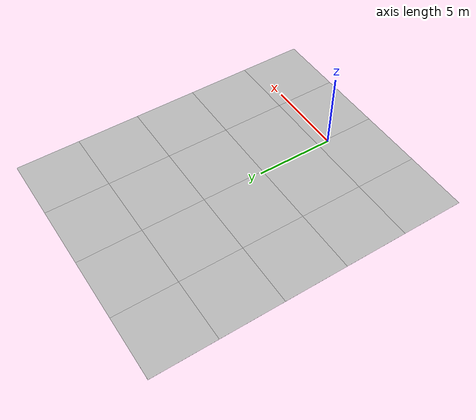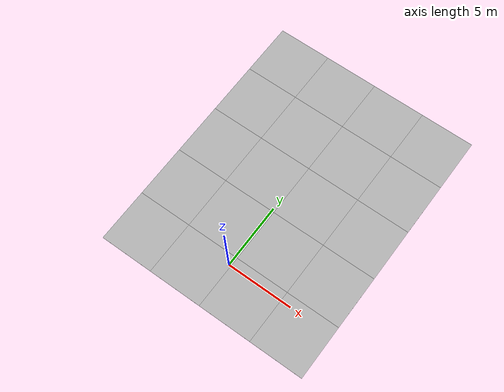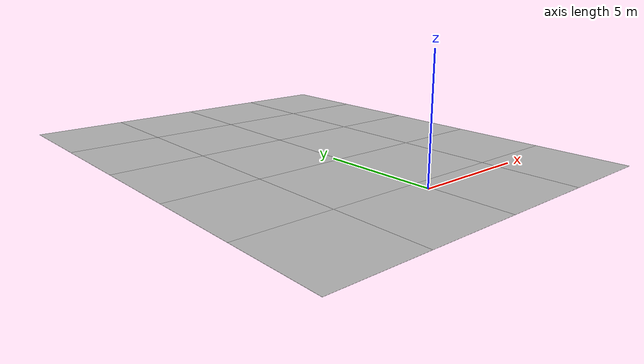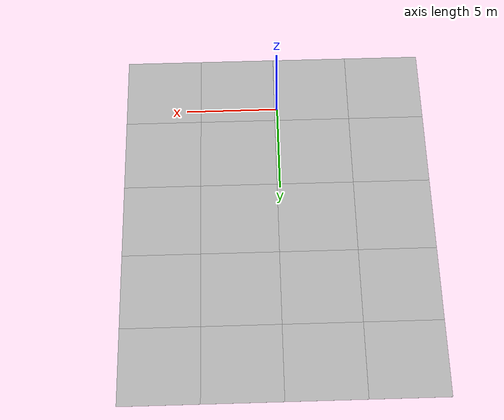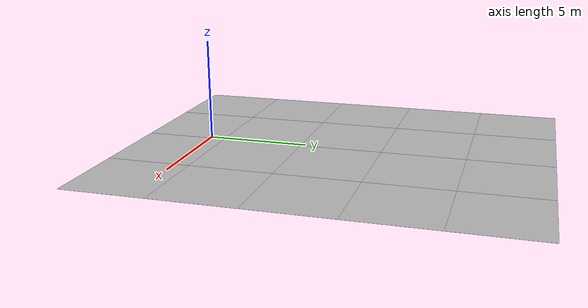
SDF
<sdf version='1.6'><world name='default'>
    <light name='sun_light' type='directional'>
      <pose frame=''>0 0 10 0 -0 0</pose>
      <diffuse>0.5 0.5 0.5 1</diffuse>
      <specular>0.1 0.1 0.1 1</specular>
      <direction>0.1 0.1 -0.9</direction>
      <attenuation>
        <range>20</range>
        <constant>0.5</constant>
        <linear>0.01</linear>
        <quadratic>0.001</quadratic>
      </attenuation>
      <cast_shadows>1</cast_shadows>
    </light>

    <model name='Tile/0-0'>
      <static>1</static>
      <link name='link'>
        <collision name='collision'>
          <geometry>
            <plane>
              <normal>0 0 1</normal>
              <size>4.096 4.096</size>
            </plane>
          </geometry>
          <surface>
            <friction>
              <ode>
                <mu>100</mu>
                <mu2>50</mu2>
              </ode>
              <torsional>
                <ode/>
              </torsional>
            </friction>
            <contact>
              <ode/>
            </contact>
            <bounce/>
          </surface>
          <max_contacts>10</max_contacts>
        </collision>
        <visual name='visual'>
          <cast_shadows>0</cast_shadows>
          <geometry>
            <plane>
              <normal>0 0 1</normal>
              <size>4.096 4.096</size>
            </plane>
          </geometry>
          <material>
            <script>
              <uri>file://materials/scripts</uri>
              <uri>file://materials/textures</uri>
              <name>Tile/5eab350b8220ac9944dbdfa4ac3288c7c17e24c3bf5df0dfcf6173d64dae00a1</name>
            </script>
          </material>
        </visual>
        <self_collide>0</self_collide>
        <enable_wind>0</enable_wind>
        <kinematic>0</kinematic>
      </link>
      <pose frame=''>-6.000071211363727 -1.3519999999999999 0 0 -0 0</pose>
    </model>

    <model name='Tile/0-1'>
      <static>1</static>
      <link name='link'>
        <collision name='collision'>
          <geometry>
            <plane>
              <normal>0 0 1</normal>
              <size>4.096 4.096</size>
            </plane>
          </geometry>
          <surface>
            <friction>
              <ode>
                <mu>100</mu>
                <mu2>50</mu2>
              </ode>
              <torsional>
                <ode/>
              </torsional>
            </friction>
            <contact>
              <ode/>
            </contact>
            <bounce/>
          </surface>
          <max_contacts>10</max_contacts>
        </collision>
        <visual name='visual'>
          <cast_shadows>0</cast_shadows>
          <geometry>
            <plane>
              <normal>0 0 1</normal>
              <size>4.096 4.096</size>
            </plane>
          </geometry>
          <material>
            <script>
              <uri>file://materials/scripts</uri>
              <uri>file://materials/textures</uri>
              <name>Tile/5eab350b8220ac9944dbdfa4ac3288c7c17e24c3bf5df0dfcf6173d64dae00a1</name>
            </script>
          </material>
        </visual>
        <self_collide>0</self_collide>
        <enable_wind>0</enable_wind>
        <kinematic>0</kinematic>
      </link>
      <pose frame=''>-6.000071211363727 2.744 0 0 -0 0</pose>
    </model>

    <model name='Tile/0-2'>
      <static>1</static>
      <link name='link'>
        <collision name='collision'>
          <geometry>
            <plane>
              <normal>0 0 1</normal>
              <size>4.096 4.096</size>
            </plane>
          </geometry>
          <surface>
            <friction>
              <ode>
                <mu>100</mu>
                <mu2>50</mu2>
              </ode>
              <torsional>
                <ode/>
              </torsional>
            </friction>
            <contact>
              <ode/>
            </contact>
            <bounce/>
          </surface>
          <max_contacts>10</max_contacts>
        </collision>
        <visual name='visual'>
          <cast_shadows>0</cast_shadows>
          <geometry>
            <plane>
              <normal>0 0 1</normal>
              <size>4.096 4.096</size>
            </plane>
          </geometry>
          <material>
            <script>
              <uri>file://materials/scripts</uri>
              <uri>file://materials/textures</uri>
              <name>Tile/5eab350b8220ac9944dbdfa4ac3288c7c17e24c3bf5df0dfcf6173d64dae00a1</name>
            </script>
          </material>
        </visual>
        <self_collide>0</self_collide>
        <enable_wind>0</enable_wind>
        <kinematic>0</kinematic>
      </link>
      <pose frame=''>-6.000071211363727 6.84 0 0 -0 0</pose>
    </model>

    <model name='Tile/0-3'>
      <static>1</static>
      <link name='link'>
        <collision name='collision'>
          <geometry>
            <plane>
              <normal>0 0 1</normal>
              <size>4.096 4.096</size>
            </plane>
          </geometry>
          <surface>
            <friction>
              <ode>
                <mu>100</mu>
                <mu2>50</mu2>
              </ode>
              <torsional>
                <ode/>
              </torsional>
            </friction>
            <contact>
              <ode/>
            </contact>
            <bounce/>
          </surface>
          <max_contacts>10</max_contacts>
        </collision>
        <visual name='visual'>
          <cast_shadows>0</cast_shadows>
          <geometry>
            <plane>
              <normal>0 0 1</normal>
              <size>4.096 4.096</size>
            </plane>
          </geometry>
          <material>
            <script>
              <uri>file://materials/scripts</uri>
              <uri>file://materials/textures</uri>
              <name>Tile/7968d2dd25822942447690608d7d124fd29300431d4a05dcc71f891a0a8b60aa</name>
            </script>
          </material>
        </visual>
        <self_collide>0</self_collide>
        <enable_wind>0</enable_wind>
        <kinematic>0</kinematic>
      </link>
      <pose frame=''>-6.000071211363727 10.936 0 0 -0 0</pose>
    </model>

    <model name='Tile/0-4'>
      <static>1</static>
      <link name='link'>
        <collision name='collision'>
          <geometry>
            <plane>
              <normal>0 0 1</normal>
              <size>4.096 4.096</size>
            </plane>
          </geometry>
          <surface>
            <friction>
              <ode>
                <mu>100</mu>
                <mu2>50</mu2>
              </ode>
              <torsional>
                <ode/>
              </torsional>
            </friction>
            <contact>
              <ode/>
            </contact>
            <bounce/>
          </surface>
          <max_contacts>10</max_contacts>
        </collision>
        <visual name='visual'>
          <cast_shadows>0</cast_shadows>
          <geometry>
            <plane>
              <normal>0 0 1</normal>
              <size>4.096 4.096</size>
            </plane>
          </geometry>
          <material>
            <script>
              <uri>file://materials/scripts</uri>
              <uri>file://materials/textures</uri>
              <name>Tile/b1a4e791d89e50a50dee77e37141c98dacc1c2ee67ded28e1726121f49cb9547</name>
            </script>
          </material>
        </visual>
        <self_collide>0</self_collide>
        <enable_wind>0</enable_wind>
        <kinematic>0</kinematic>
      </link>
      <pose frame=''>-6.000071211363727 15.031999999999998 0 0 -0 0</pose>
    </model>

    <model name='Tile/1-0'>
      <static>1</static>
      <link name='link'>
        <collision name='collision'>
          <geometry>
            <plane>
              <normal>0 0 1</normal>
              <size>4.096 4.096</size>
            </plane>
          </geometry>
          <surface>
            <friction>
              <ode>
                <mu>100</mu>
                <mu2>50</mu2>
              </ode>
              <torsional>
                <ode/>
              </torsional>
            </friction>
            <contact>
              <ode/>
            </contact>
            <bounce/>
          </surface>
          <max_contacts>10</max_contacts>
        </collision>
        <visual name='visual'>
          <cast_shadows>0</cast_shadows>
          <geometry>
            <plane>
              <normal>0 0 1</normal>
              <size>4.096 4.096</size>
            </plane>
          </geometry>
          <material>
            <script>
              <uri>file://materials/scripts</uri>
              <uri>file://materials/textures</uri>
              <name>Tile/aaa59d9bf7729be51c916e444f146310e3d09b5bed3707d455f523dbf90cf39a</name>
            </script>
          </material>
        </visual>
        <self_collide>0</self_collide>
        <enable_wind>0</enable_wind>
        <kinematic>0</kinematic>
      </link>
      <pose frame=''>-1.9040712113637266 -1.3519999999999999 0 0 -0 0</pose>
    </model>

    <model name='Tile/1-1'>
      <static>1</static>
      <link name='link'>
        <collision name='collision'>
          <geometry>
            <plane>
              <normal>0 0 1</normal>
              <size>4.096 4.096</size>
            </plane>
          </geometry>
          <surface>
            <friction>
              <ode>
                <mu>100</mu>
                <mu2>50</mu2>
              </ode>
              <torsional>
                <ode/>
              </torsional>
            </friction>
            <contact>
              <ode/>
            </contact>
            <bounce/>
          </surface>
          <max_contacts>10</max_contacts>
        </collision>
        <visual name='visual'>
          <cast_shadows>0</cast_shadows>
          <geometry>
            <plane>
              <normal>0 0 1</normal>
              <size>4.096 4.096</size>
            </plane>
          </geometry>
          <material>
            <script>
              <uri>file://materials/scripts</uri>
              <uri>file://materials/textures</uri>
              <name>Tile/5eab350b8220ac9944dbdfa4ac3288c7c17e24c3bf5df0dfcf6173d64dae00a1</name>
            </script>
          </material>
        </visual>
        <self_collide>0</self_collide>
        <enable_wind>0</enable_wind>
        <kinematic>0</kinematic>
      </link>
      <pose frame=''>-1.9040712113637266 2.744 0 0 -0 0</pose>
    </model>

    <model name='Tile/1-2'>
      <static>1</static>
      <link name='link'>
        <collision name='collision'>
          <geometry>
            <plane>
              <normal>0 0 1</normal>
              <size>4.096 4.096</size>
            </plane>
          </geometry>
          <surface>
            <friction>
              <ode>
                <mu>100</mu>
                <mu2>50</mu2>
              </ode>
              <torsional>
                <ode/>
              </torsional>
            </friction>
            <contact>
              <ode/>
            </contact>
            <bounce/>
          </surface>
          <max_contacts>10</max_contacts>
        </collision>
        <visual name='visual'>
          <cast_shadows>0</cast_shadows>
          <geometry>
            <plane>
              <normal>0 0 1</normal>
              <size>4.096 4.096</size>
            </plane>
          </geometry>
          <material>
            <script>
              <uri>file://materials/scripts</uri>
              <uri>file://materials/textures</uri>
              <name>Tile/4b8e055e1231cba4dbbb75f1d346e650e340bab5f44de81bca253f0abc9ff5a4</name>
            </script>
          </material>
        </visual>
        <self_collide>0</self_collide>
        <enable_wind>0</enable_wind>
        <kinematic>0</kinematic>
      </link>
      <pose frame=''>-1.9040712113637266 6.84 0 0 -0 0</pose>
    </model>

    <model name='Tile/1-3'>
      <static>1</static>
      <link name='link'>
        <collision name='collision'>
          <geometry>
            <plane>
              <normal>0 0 1</normal>
              <size>4.096 4.096</size>
            </plane>
          </geometry>
          <surface>
            <friction>
              <ode>
                <mu>100</mu>
                <mu2>50</mu2>
              </ode>
              <torsional>
                <ode/>
              </torsional>
            </friction>
            <contact>
              <ode/>
            </contact>
            <bounce/>
          </surface>
          <max_contacts>10</max_contacts>
        </collision>
        <visual name='visual'>
          <cast_shadows>0</cast_shadows>
          <geometry>
            <plane>
              <normal>0 0 1</normal>
              <size>4.096 4.096</size>
            </plane>
          </geometry>
          <material>
            <script>
              <uri>file://materials/scripts</uri>
              <uri>file://materials/textures</uri>
              <name>Tile/e3db37d393fc11b6df18f2b366b197519d1f4ecbfc96175ee9e874dfee3612c6</name>
            </script>
          </material>
        </visual>
        <self_collide>0</self_collide>
        <enable_wind>0</enable_wind>
        <kinematic>0</kinematic>
      </link>
      <pose frame=''>-1.9040712113637266 10.936 0 0 -0 0</pose>
    </model>

    <model name='Tile/1-4'>
      <static>1</static>
      <link name='link'>
        <collision name='collision'>
          <geometry>
            <plane>
              <normal>0 0 1</normal>
              <size>4.096 4.096</size>
            </plane>
          </geometry>
          <surface>
            <friction>
              <ode>
                <mu>100</mu>
                <mu2>50</mu2>
              </ode>
              <torsional>
                <ode/>
              </torsional>
            </friction>
            <contact>
              <ode/>
            </contact>
            <bounce/>
          </surface>
          <max_contacts>10</max_contacts>
        </collision>
        <visual name='visual'>
          <cast_shadows>0</cast_shadows>
          <geometry>
            <plane>
              <normal>0 0 1</normal>
              <size>4.096 4.096</size>
            </plane>
          </geometry>
          <material>
            <script>
              <uri>file://materials/scripts</uri>
              <uri>file://materials/textures</uri>
              <name>Tile/8f731d8d211b837ce30188a5d5c2fb28cee32955be0bffc718181ce14878d47d</name>
            </script>
          </material>
        </visual>
        <self_collide>0</self_collide>
        <enable_wind>0</enable_wind>
        <kinematic>0</kinematic>
      </link>
      <pose frame=''>-1.9040712113637266 15.031999999999998 0 0 -0 0</pose>
    </model>

    <model name='Tile/2-0'>
      <static>1</static>
      <link name='link'>
        <collision name='collision'>
          <geometry>
            <plane>
              <normal>0 0 1</normal>
              <size>4.096 4.096</size>
            </plane>
          </geometry>
          <surface>
            <friction>
              <ode>
                <mu>100</mu>
                <mu2>50</mu2>
              </ode>
              <torsional>
                <ode/>
              </torsional>
            </friction>
            <contact>
              <ode/>
            </contact>
            <bounce/>
          </surface>
          <max_contacts>10</max_contacts>
        </collision>
        <visual name='visual'>
          <cast_shadows>0</cast_shadows>
          <geometry>
            <plane>
              <normal>0 0 1</normal>
              <size>4.096 4.096</size>
            </plane>
          </geometry>
          <material>
            <script>
              <uri>file://materials/scripts</uri>
              <uri>file://materials/textures</uri>
              <name>Tile/0cb4ca4c65ba40db8a47bcdcba6d051ada3fb983c005904544cce3afe15e2301</name>
            </script>
          </material>
        </visual>
        <self_collide>0</self_collide>
        <enable_wind>0</enable_wind>
        <kinematic>0</kinematic>
      </link>
      <pose frame=''>2.1919287886362735 -1.3519999999999999 0 0 -0 0</pose>
    </model>

    <model name='Tile/2-1'>
      <static>1</static>
      <link name='link'>
        <collision name='collision'>
          <geometry>
            <plane>
              <normal>0 0 1</normal>
              <size>4.096 4.096</size>
            </plane>
          </geometry>
          <surface>
            <friction>
              <ode>
                <mu>100</mu>
                <mu2>50</mu2>
              </ode>
              <torsional>
                <ode/>
              </torsional>
            </friction>
            <contact>
              <ode/>
            </contact>
            <bounce/>
          </surface>
          <max_contacts>10</max_contacts>
        </collision>
        <visual name='visual'>
          <cast_shadows>0</cast_shadows>
          <geometry>
            <plane>
              <normal>0 0 1</normal>
              <size>4.096 4.096</size>
            </plane>
          </geometry>
          <material>
            <script>
              <uri>file://materials/scripts</uri>
              <uri>file://materials/textures</uri>
              <name>Tile/988c334361e6e1fc733f92f7097d6621b4c5a086964d6c79136e4750b4d9be42</name>
            </script>
          </material>
        </visual>
        <self_collide>0</self_collide>
        <enable_wind>0</enable_wind>
        <kinematic>0</kinematic>
      </link>
      <pose frame=''>2.1919287886362735 2.744 0 0 -0 0</pose>
    </model>

    <model name='Tile/2-2'>
      <static>1</static>
      <link name='link'>
        <collision name='collision'>
          <geometry>
            <plane>
              <normal>0 0 1</normal>
              <size>4.096 4.096</size>
            </plane>
          </geometry>
          <surface>
            <friction>
              <ode>
                <mu>100</mu>
                <mu2>50</mu2>
              </ode>
              <torsional>
                <ode/>
              </torsional>
            </friction>
            <contact>
              <ode/>
            </contact>
            <bounce/>
          </surface>
          <max_contacts>10</max_contacts>
        </collision>
        <visual name='visual'>
          <cast_shadows>0</cast_shadows>
          <geometry>
            <plane>
              <normal>0 0 1</normal>
              <size>4.096 4.096</size>
            </plane>
          </geometry>
          <material>
            <script>
              <uri>file://materials/scripts</uri>
              <uri>file://materials/textures</uri>
              <name>Tile/fa6777ef363e64ed9761346e6966051e3522907134ed8ac138ceff247ff5946a</name>
            </script>
          </material>
        </visual>
        <self_collide>0</self_collide>
        <enable_wind>0</enable_wind>
        <kinematic>0</kinematic>
      </link>
      <pose frame=''>2.1919287886362735 6.84 0 0 -0 0</pose>
    </model>

    <model name='Tile/2-3'>
      <static>1</static>
      <link name='link'>
        <collision name='collision'>
          <geometry>
            <plane>
              <normal>0 0 1</normal>
              <size>4.096 4.096</size>
            </plane>
          </geometry>
          <surface>
            <friction>
              <ode>
                <mu>100</mu>
                <mu2>50</mu2>
              </ode>
              <torsional>
                <ode/>
              </torsional>
            </friction>
            <contact>
              <ode/>
            </contact>
            <bounce/>
          </surface>
          <max_contacts>10</max_contacts>
        </collision>
        <visual name='visual'>
          <cast_shadows>0</cast_shadows>
          <geometry>
            <plane>
              <normal>0 0 1</normal>
              <size>4.096 4.096</size>
            </plane>
          </geometry>
          <material>
            <script>
              <uri>file://materials/scripts</uri>
              <uri>file://materials/textures</uri>
              <name>Tile/9612d2192978744b50c9b67aaed5a21a49a4b2a2be373f8c0eedc751898f9afc</name>
            </script>
          </material>
        </visual>
        <self_collide>0</self_collide>
        <enable_wind>0</enable_wind>
        <kinematic>0</kinematic>
      </link>
      <pose frame=''>2.1919287886362735 10.936 0 0 -0 0</pose>
    </model>

    <model name='Tile/2-4'>
      <static>1</static>
      <link name='link'>
        <collision name='collision'>
          <geometry>
            <plane>
              <normal>0 0 1</normal>
              <size>4.096 4.096</size>
            </plane>
          </geometry>
          <surface>
            <friction>
              <ode>
                <mu>100</mu>
                <mu2>50</mu2>
              </ode>
              <torsional>
                <ode/>
              </torsional>
            </friction>
            <contact>
              <ode/>
            </contact>
            <bounce/>
          </surface>
          <max_contacts>10</max_contacts>
        </collision>
        <visual name='visual'>
          <cast_shadows>0</cast_shadows>
          <geometry>
            <plane>
              <normal>0 0 1</normal>
              <size>4.096 4.096</size>
            </plane>
          </geometry>
          <material>
            <script>
              <uri>file://materials/scripts</uri>
              <uri>file://materials/textures</uri>
              <name>Tile/5eab350b8220ac9944dbdfa4ac3288c7c17e24c3bf5df0dfcf6173d64dae00a1</name>
            </script>
          </material>
        </visual>
        <self_collide>0</self_collide>
        <enable_wind>0</enable_wind>
        <kinematic>0</kinematic>
      </link>
      <pose frame=''>2.1919287886362735 15.031999999999998 0 0 -0 0</pose>
    </model>

    <model name='Tile/3-0'>
      <static>1</static>
      <link name='link'>
        <collision name='collision'>
          <geometry>
            <plane>
              <normal>0 0 1</normal>
              <size>4.096 4.096</size>
            </plane>
          </geometry>
          <surface>
            <friction>
              <ode>
                <mu>100</mu>
                <mu2>50</mu2>
              </ode>
              <torsional>
                <ode/>
              </torsional>
            </friction>
            <contact>
              <ode/>
            </contact>
            <bounce/>
          </surface>
          <max_contacts>10</max_contacts>
        </collision>
        <visual name='visual'>
          <cast_shadows>0</cast_shadows>
          <geometry>
            <plane>
              <normal>0 0 1</normal>
              <size>4.096 4.096</size>
            </plane>
          </geometry>
          <material>
            <script>
              <uri>file://materials/scripts</uri>
              <uri>file://materials/textures</uri>
              <name>Tile/320337d65dbddf1f580a0cb39dc1ad13b35ad8e8f999b8da6e561a32bba78507</name>
            </script>
          </material>
        </visual>
        <self_collide>0</self_collide>
        <enable_wind>0</enable_wind>
        <kinematic>0</kinematic>
      </link>
      <pose frame=''>6.287928788636274 -1.3519999999999999 0 0 -0 0</pose>
    </model>

    <model name='Tile/3-1'>
      <static>1</static>
      <link name='link'>
        <collision name='collision'>
          <geometry>
            <plane>
              <normal>0 0 1</normal>
              <size>4.096 4.096</size>
            </plane>
          </geometry>
          <surface>
            <friction>
              <ode>
                <mu>100</mu>
                <mu2>50</mu2>
              </ode>
              <torsional>
                <ode/>
              </torsional>
            </friction>
            <contact>
              <ode/>
            </contact>
            <bounce/>
          </surface>
          <max_contacts>10</max_contacts>
        </collision>
        <visual name='visual'>
          <cast_shadows>0</cast_shadows>
          <geometry>
            <plane>
              <normal>0 0 1</normal>
              <size>4.096 4.096</size>
            </plane>
          </geometry>
          <material>
            <script>
              <uri>file://materials/scripts</uri>
              <uri>file://materials/textures</uri>
              <name>Tile/49ba6e166475faa1dd1fad59d67c556ffbf9b5928a96492591e549953b32f153</name>
            </script>
          </material>
        </visual>
        <self_collide>0</self_collide>
        <enable_wind>0</enable_wind>
        <kinematic>0</kinematic>
      </link>
      <pose frame=''>6.287928788636274 2.744 0 0 -0 0</pose>
    </model>

    <model name='Tile/3-2'>
      <static>1</static>
      <link name='link'>
        <collision name='collision'>
          <geometry>
            <plane>
              <normal>0 0 1</normal>
              <size>4.096 4.096</size>
            </plane>
          </geometry>
          <surface>
            <friction>
              <ode>
                <mu>100</mu>
                <mu2>50</mu2>
              </ode>
              <torsional>
                <ode/>
              </torsional>
            </friction>
            <contact>
              <ode/>
            </contact>
            <bounce/>
          </surface>
          <max_contacts>10</max_contacts>
        </collision>
        <visual name='visual'>
          <cast_shadows>0</cast_shadows>
          <geometry>
            <plane>
              <normal>0 0 1</normal>
              <size>4.096 4.096</size>
            </plane>
          </geometry>
          <material>
            <script>
              <uri>file://materials/scripts</uri>
              <uri>file://materials/textures</uri>
              <name>Tile/5eab350b8220ac9944dbdfa4ac3288c7c17e24c3bf5df0dfcf6173d64dae00a1</name>
            </script>
          </material>
        </visual>
        <self_collide>0</self_collide>
        <enable_wind>0</enable_wind>
        <kinematic>0</kinematic>
      </link>
      <pose frame=''>6.287928788636274 6.84 0 0 -0 0</pose>
    </model>

    <model name='Tile/3-3'>
      <static>1</static>
      <link name='link'>
        <collision name='collision'>
          <geometry>
            <plane>
              <normal>0 0 1</normal>
              <size>4.096 4.096</size>
            </plane>
          </geometry>
          <surface>
            <friction>
              <ode>
                <mu>100</mu>
                <mu2>50</mu2>
              </ode>
              <torsional>
                <ode/>
              </torsional>
            </friction>
            <contact>
              <ode/>
            </contact>
            <bounce/>
          </surface>
          <max_contacts>10</max_contacts>
        </collision>
        <visual name='visual'>
          <cast_shadows>0</cast_shadows>
          <geometry>
            <plane>
              <normal>0 0 1</normal>
              <size>4.096 4.096</size>
            </plane>
          </geometry>
          <material>
            <script>
              <uri>file://materials/scripts</uri>
              <uri>file://materials/textures</uri>
              <name>Tile/5eab350b8220ac9944dbdfa4ac3288c7c17e24c3bf5df0dfcf6173d64dae00a1</name>
            </script>
          </material>
        </visual>
        <self_collide>0</self_collide>
        <enable_wind>0</enable_wind>
        <kinematic>0</kinematic>
      </link>
      <pose frame=''>6.287928788636274 10.936 0 0 -0 0</pose>
    </model>

    <model name='Tile/3-4'>
      <static>1</static>
      <link name='link'>
        <collision name='collision'>
          <geometry>
            <plane>
              <normal>0 0 1</normal>
              <size>4.096 4.096</size>
            </plane>
          </geometry>
          <surface>
            <friction>
              <ode>
                <mu>100</mu>
                <mu2>50</mu2>
              </ode>
              <torsional>
                <ode/>
              </torsional>
            </friction>
            <contact>
              <ode/>
            </contact>
            <bounce/>
          </surface>
          <max_contacts>10</max_contacts>
        </collision>
        <visual name='visual'>
          <cast_shadows>0</cast_shadows>
          <geometry>
            <plane>
              <normal>0 0 1</normal>
              <size>4.096 4.096</size>
            </plane>
          </geometry>
          <material>
            <script>
              <uri>file://materials/scripts</uri>
              <uri>file://materials/textures</uri>
              <name>Tile/5eab350b8220ac9944dbdfa4ac3288c7c17e24c3bf5df0dfcf6173d64dae00a1</name>
            </script>
          </material>
        </visual>
        <self_collide>0</self_collide>
        <enable_wind>0</enable_wind>
        <kinematic>0</kinematic>
      </link>
      <pose frame=''>6.287928788636274 15.031999999999998 0 0 -0 0</pose>
    </model>
    </world></sdf>
